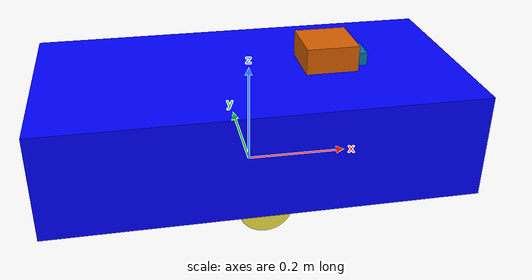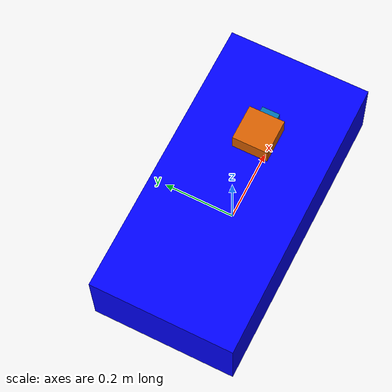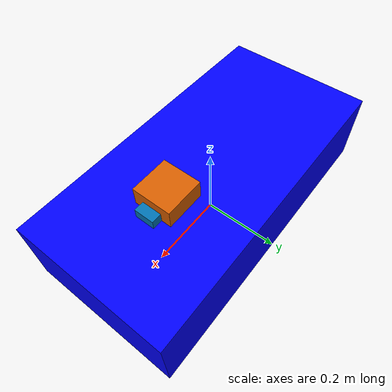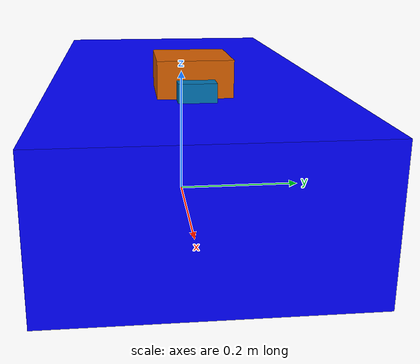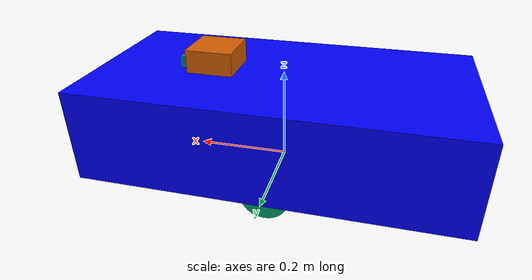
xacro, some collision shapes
<?xml version='1.0'?>

<robot name="my_robot" xmlns:xacro="http://www.ros.org/wiki/xacro">

<xacro:include filename="$(find my_robot)/urdf/my_robot.gazebo" />

                                                  <link name="robot_footprint"></link>

                                                  <joint name="robot_footprint_joint" type="fixed">
                                                    <origin xyz="0 0 0.1" rpy="0 0 0" />
                                                    <parent link="robot_footprint"/>
                                                    <child link="chassis" />
                                                  </joint>

                                                  <link name='chassis'>

                                                    <inertial>
                                                      <mass value="15.0"/>
                                                      <origin xyz="0.0 0 0" rpy=" 0 0 0"/>
                                                      <inertia
                                                          ixx="0.1" ixy="0" ixz="0"
                                                          iyy="0.1" iyz="0"
                                                          izz="0.1"
                                                      />
                                                    </inertial>

                                                    <collision name='collision'>
                                                      <origin xyz="0 0 0" rpy=" 0 0 0"/>
                                                      <geometry>
                                                        <box size=".8 .4 .2"/>
                                                      </geometry>
                                                    </collision>

                                                    <visual name='chassis_visual'>
                                                      <origin xyz="0 0 0" rpy=" 0 0 0"/>
                                                      <geometry>
                                                        <box size=".8 .4 .2"/>
                                                      </geometry>
                                                      <material name="blue">
    								<color rgba="0 0 1 1"/>
 							 </material>
                                                    </visual>

                                                    <collision name='back_caster_collision'>
                                                      <origin xyz="-0.15 0 -0.1" rpy=" 0 0 0"/>
                                                      <geometry>
                                                        <sphere radius="0.0499"/>
                                                      </geometry>
                                                    </collision>

                                                    <visual name='back_caster_visual'>
                                                      <origin xyz="-0.15 0 -0.1" rpy=" 0 0 0"/>
                                                      <geometry>
                                                        <sphere radius="0.05"/>
                                                      </geometry>
                                                    </visual>

                                                    <collision name='front_caster_collision'>
                                                      <origin xyz="0.15 0 -0.1" rpy=" 0 0 0"/>
                                                      <geometry>
                                                        <sphere radius="0.0499"/>
                                                      </geometry>
                                                    </collision>

                                                    <visual name='front_caster_visual'>
                                                      <origin xyz="0.15 0 -0.1" rpy=" 0 0 0"/>
                                                      <geometry>
                                                        <sphere radius="0.05"/>
                                                      </geometry>
                                                    </visual>

                                                  </link>

<link name="left_wheel">
  <inertial>
    <mass value="5"/>
    <origin xyz="0 0 0" rpy="0 1.5707 1.5707"/>
    <inertia
      ixx="0.1" ixy="0" ixz="0"
      iyy="0.1" iyz="0"
      izz="0.1"/>
  </inertial>

  <collision name="left_wheel_collision">
    <origin xyz="0 0 0" rpy="0 1.5707 1.5707"/>
    <geometry>
      <cylinder radius="0.05" length="0.05"/>
    </geometry>
  </collision>

  <visual name="left_wheel_visual">
    <origin xyz="0 0 0" rpy="0 1.5707 1.5707"/>
    <geometry>
      <cylinder radius="0.05" length="0.05"/>
    </geometry>
  </visual>
</link>

<link name="right_wheel">
  <inertial>
    <mass value="5"/>
    <origin xyz="0 0 0" rpy="0 1.5707 1.5707"/>
    <inertia
      ixx="0.1" ixy="0" ixz="0"
      iyy="0.1" iyz="0"
      izz="0.1"/>
  </inertial>

  <collision name="right_wheel_collision">
    <origin xyz="0 0 0" rpy="0 1.5707 1.5707"/>
    <geometry>
      <cylinder radius="0.05" length="0.05"/>
    </geometry>
  </collision>

  <visual name="right_wheel_visual">
    <origin xyz="0 0 0" rpy="0 1.5707 1.5707"/>
    <geometry>
      <cylinder radius="0.05" length="0.05"/>
    </geometry>
  </visual>
</link>

<link name="camera">
  <inertial>
    <mass value="0.1"/>
    <origin xyz="0 0 0" rpy="0 0 0"/>
    <inertia
      ixx="1e-6" ixy="0" ixz="0"
      iyy="1e-6" iyz="0"
      izz="1e-6"/>
  </inertial>

  <collision name="camera_collision">
    <origin xyz="0 0 0" rpy="0 0 0"/>
    <geometry>
      <box size="0.05 0.05 0.05"/>
    </geometry>
  </collision>

  <visual name="camera_visual">
    <origin xyz="0 0 0" rpy="0 0 0"/>
    <geometry>
      <box size="0.05 0.05 0.05"/>
    </geometry>
  </visual>
</link>

<joint name="camera_joint" type="fixed">
  <origin xyz="0.2 0 0.1" rpy="0 0 0"/>
  <parent link="chassis"/>
  <child link="camera"/>
</joint>

<link name="hokuyo">
  <inertial>
    <mass value="1e-5"/>
    <origin xyz="0 0 0" rpy="0 0 0"/>
    <inertia
      ixx="1e-6" ixy="0" ixz="0"
      iyy="1e-6" iyz="0"
      izz="1e-6"/>
  </inertial>

  <collision name="hokuyo_collision">
    <origin xyz="0 0 0" rpy="0 0 0"/>
    <geometry>
      <box size="0.1 0.1 0.1"/>
    </geometry>
  </collision>

  <visual name="hokuyo_visual">
    <origin xyz="0 0 0" rpy="0 0 0"/>
    <geometry>
      <mesh filename="package://my_robot/meshes/hokuyo.dae"/>
    </geometry>
  </visual>
</link>

<joint name="hokuyo_joint" type="fixed">
  <origin xyz="0.15 0 0.1" rpy="0 0 0"/>
  <parent link="chassis"/>
  <child link="hokuyo"/>
  <axis xyz="0 1 0"/>
</joint>

 <joint type="continuous" name="left_wheel_hinge">
    <origin xyz="0 0.15 -0.1" rpy="0 0 0"/>
    <child link="left_wheel"/>
    <parent link="chassis"/>
    <axis xyz="0 1 0"/>
    <limit effort="10000" velocity="1000"/>
    <dynamics damping="1.0" friction="1.0"/>
  </joint>

 <joint type="continuous" name="right_wheel_hinge">
    <origin xyz="0 -0.15 -0.1" rpy="0 0 0"/>
    <child link="right_wheel"/>
    <parent link="chassis"/>
    <axis xyz="0 1 0"/>
    <limit effort="10000" velocity="1000"/>
    <dynamics damping="1.0" friction="1.0"/>
  </joint>

</robot>
